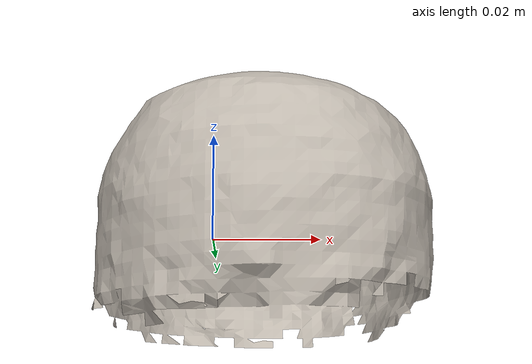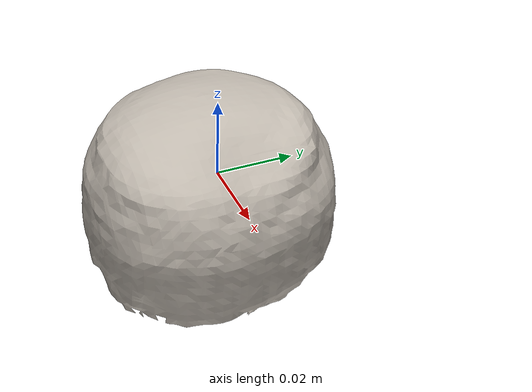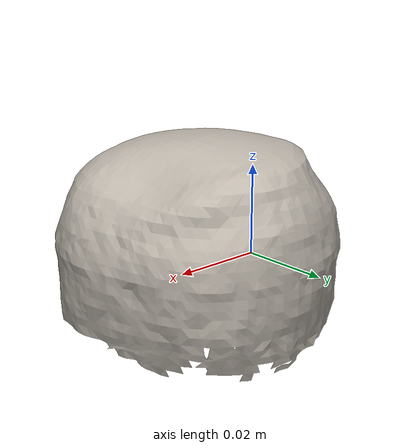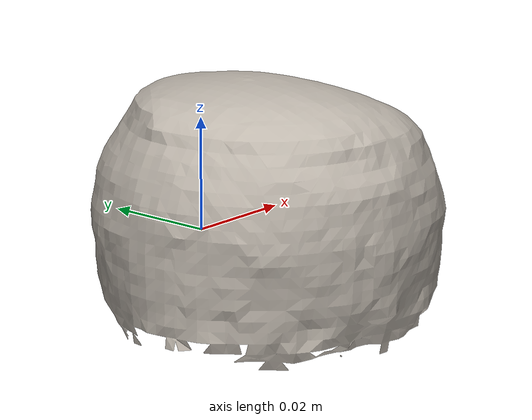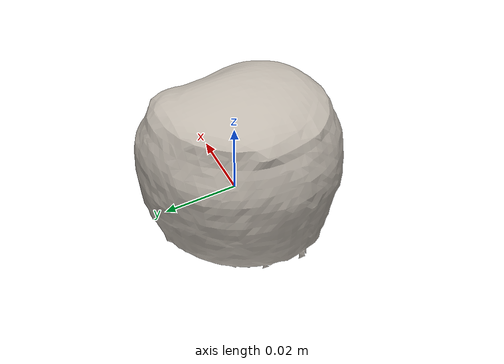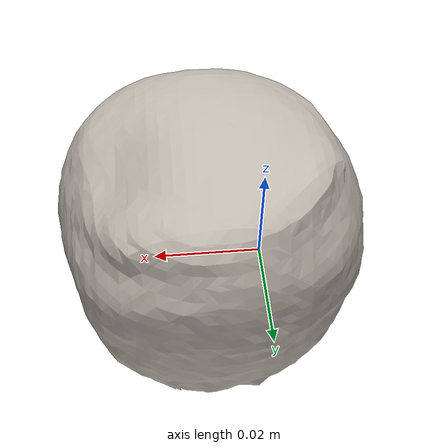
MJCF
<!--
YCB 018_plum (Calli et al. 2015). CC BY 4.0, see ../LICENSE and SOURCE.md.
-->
<mujoco model="ycb_018_plum">
  <compiler angle="radian" meshdir="." texturedir="."/>
  <asset>
    <texture name="plum" type="2d" file="texture_map.png"/>
    <material name="plum" texture="plum"/>
    <mesh name="plum" file="textured.obj"/>
  </asset>
  <worldbody>
    <body name="plum">
      <freejoint name="plum_free"/>
      <geom name="plum_visual" type="mesh" mesh="plum" material="plum" pos="0.0078 -0.0194 -0.0262"
            contype="0" conaffinity="0" group="2" mass="0"/>
      <geom name="plum_collision" type="mesh" mesh="plum" pos="0.0078 -0.0194 -0.0262" mass="0.025"
            group="3" condim="4" friction="0.9 0.005 0.0001"/>
    </body>
  </worldbody>
</mujoco>
